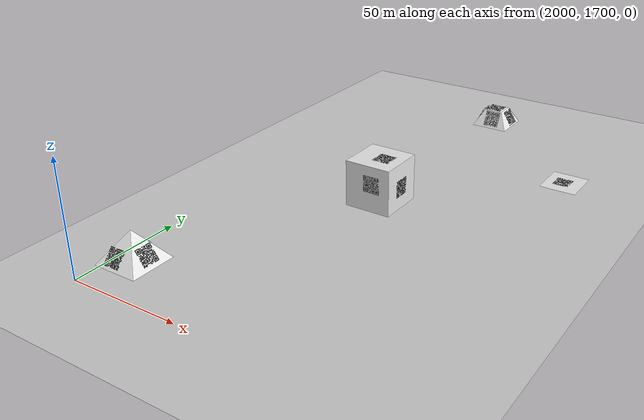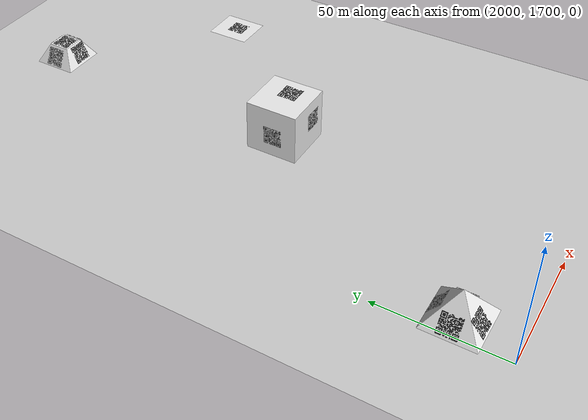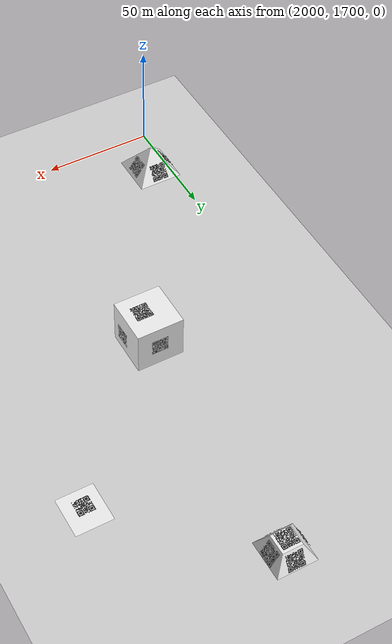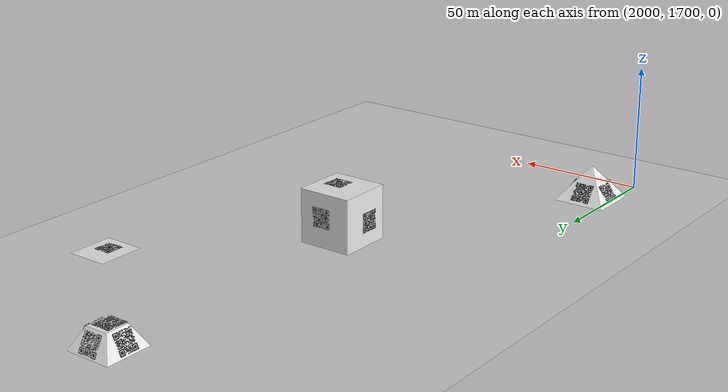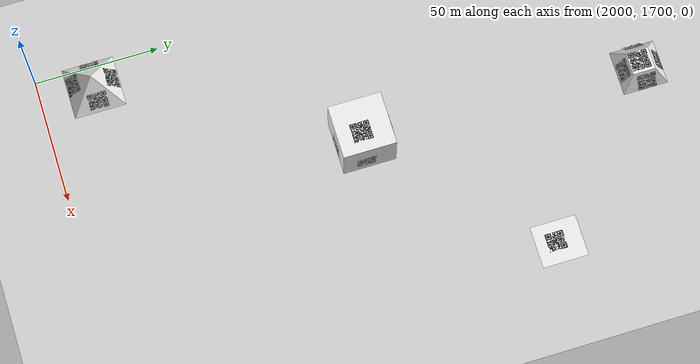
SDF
<sdf version="1.7">
 <world name="default">
  <physics name="default_physics" default="0" type="ode">
   <ode>
    <solver>
     <type>quick</type>
     <iters>100</iters>
     <sor>1</sor>
     <use_dynamic_moi_rescaling>0</use_dynamic_moi_rescaling>
    </solver>
    <constraints>
     <cfm>0</cfm>
     <erp>0.2</erp>
     <contact_max_correcting_vel>0.1</contact_max_correcting_vel>
     <contact_surface_layer>0</contact_surface_layer>
    </constraints>
   </ode>
   <real_time_update_rate>400</real_time_update_rate>
   <max_step_size>0.0025</max_step_size>
   <real_time_factor>1</real_time_factor>
  </physics>
  <scene>
   <sky><clouds><speed>5</speed></clouds></sky>
   <ambient>0.95 0.95 0.95 1</ambient>
   <background>0.3 0.3 0.3 1</background>
   <shadows>1</shadows>
  </scene>
  <gravity>0 0 -9.8</gravity>
  <magnetic_field>6e-06 2.3e-05 -4.2e-05</magnetic_field>
  <atmosphere type="adiabatic"/>
  <audio><device>default</device></audio>
  <spherical_coordinates>
   <surface_model>EARTH_WGS84</surface_model>
   <latitude_deg>0</latitude_deg>
   <longitude_deg>0</longitude_deg>
   <elevation>0</elevation>
   <heading_deg>0</heading_deg>
  </spherical_coordinates>
  <model name="ground_plane">
   <static>1</static>
   <link name="link">
    <collision name="collision">
     <geometry><plane><normal>0 0 1</normal><size>50000 50000</size></plane></geometry>
     <surface><friction><ode><mu>1</mu><mu2>1</mu2></ode></friction></surface>
    </collision>
    <visual name="runway">
     <pose>0 0 0.005 0 -0 0</pose>
     <cast_shadows>0</cast_shadows>
     <geometry><plane><normal>0 0 1</normal><size>1829 45</size></plane></geometry>
     <material>
      <script><uri>file://media/materials/scripts/gazebo.material</uri><name>Gazebo/Runway</name></script>
     </material>
    </visual>
    <visual name="grass">
     <pose>0 0 -0.1 0 -0 0</pose>
     <cast_shadows>0</cast_shadows>
     <geometry><plane><normal>0 0 1</normal><size>10000 10000</size></plane></geometry>
     <material>
      <script><uri>file://media/materials/scripts/gazebo.material</uri><name>Gazebo/Grass</name></script>
     </material>
    </visual>
    <kinematic>1</kinematic>
   </link>
  </model>
  <light name="sun" type="directional">
   <pose>1865.5 2039.39 10 0 -0 0</pose>
   <diffuse>0.8 0.8 0.8 1</diffuse>
   <specular>0.2 0.2 0.2 1</specular>
   <attenuation>
    <range>1000</range>
    <constant>0.9</constant>
    <linear>0.01</linear>
    <quadratic>0.001</quadratic>
   </attenuation>
   <direction>-0.5 0.1 -0.9</direction>
   <spot><inner_angle>0</inner_angle><outer_angle>0</outer_angle><falloff>0</falloff></spot>
  </light>
  <model name="piramid_qr_added_0">
   <pose>1997.74 1732.07 -0.020172 0 -0 0</pose>
   <static>1</static>
   <link name="link">
    <visual name="visual">
     <geometry>
      <mesh><scale>17 17 17</scale><uri>model://piramid_qr_added/meshes/piramid_qr_added.dae</uri></mesh>
     </geometry>
     <material><script><name>Gazebo/White</name><uri>__default__</uri></script></material>
    </visual>
   </link>
  </model>
  <model name="istikbalgoklerdedir_q">
   <pose>2000.32 1722.2 4.01213 0 -0.918811 0</pose>
   <static>1</static>
   <link name="link">
    <visual name="visual">
     <geometry>
      <mesh><scale>10 10 1e-06</scale><uri>model://QR_17/meshes/istikbalgoklerdedir_q.stl</uri></mesh>
     </geometry>
     <material><script><name>Gazebo/Black</name><uri>__default__</uri></script></material>
    </visual>
   </link>
  </model>
  <model name="istikbalgoklerdedir_q_0">
   <pose>2007.85 1729.47 4.3142 -0.919405 0 0</pose>
   <static>1</static>
   <link name="link">
    <visual name="visual">
     <geometry>
      <mesh><scale>10 10 1e-06</scale><uri>model://QR_17/meshes/istikbalgoklerdedir_q.stl</uri></mesh>
     </geometry>
     <material><script><name>Gazebo/Black</name><uri>__default__</uri></script></material>
    </visual>
   </link>
  </model>
  <model name="istikbalgoklerdedir_q_1">
   <pose>2015.52 1721.84 4.79632 0 0.957927 0</pose>
   <static>1</static>
   <link name="link">
    <visual name="visual">
     <geometry>
      <mesh><scale>10 10 1e-06</scale><uri>model://QR_17/meshes/istikbalgoklerdedir_q.stl</uri></mesh>
     </geometry>
     <material><script><name>Gazebo/Black</name><uri>__default__</uri></script></material>
    </visual>
   </link>
  </model>
  <model name="istikbalgoklerdedir_q_2">
   <pose>2006.35 1714.04 4.41025 0.879302 -0 0</pose>
   <static>1</static>
   <link name="link">
    <visual name="visual">
     <geometry>
      <mesh><scale>10 10 1e-06</scale><uri>model://QR_17/meshes/istikbalgoklerdedir_q.stl</uri></mesh>
     </geometry>
     <material><script><name>Gazebo/Black</name><uri>__default__</uri></script></material>
    </visual>
   </link>
  </model>
  <model name="cube_qr_added">
   <pose>2049.47 1805.48 -0.210759 0 -0 0</pose>
   <static>1</static>
   <link name="link">
    <visual name="visual">
     <geometry>
      <mesh><scale>10 10 10</scale><uri>model://cube_qr_added/meshes/cube_qr_added.dae</uri></mesh>
     </geometry>
     <material><script><name>Gazebo/White</name><uri>__default__</uri></script></material>
    </visual>
   </link>
  </model>
  <model name="square_qr">
   <pose>2112.9 1867.81 0.317165 0 -0 0</pose>
   <static>1</static>
   <link name="link">
    <visual name="visual">
     <geometry><mesh><scale>6 6 0.001</scale><uri>model://square_qr/meshes/square_qr.dae</uri></mesh></geometry>
     <material><script><name>Gazebo/White</name><uri>__default__</uri></script></material>
    </visual>
   </link>
  </model>
  <model name="mustafakemalataturk_m">
   <pose>2048.52 1815 9.5528 -1.5708 -0 -1.5708</pose>
   <static>1</static>
   <link name="link">
    <visual name="visual">
     <geometry>
      <mesh><scale>10 10 1e-06</scale><uri>model://QR_14/meshes/mustafakemalataturk_m.stl</uri></mesh>
     </geometry>
     <material><script><name>Gazebo/Black</name><uri>__default__</uri></script></material>
    </visual>
   </link>
  </model>
  <model name="mustafakemalataturk_m_0">
   <pose>2060.92 1827.54 11.6504 1.5708 -0 0</pose>
   <static>1</static>
   <link name="link">
    <visual name="visual">
     <geometry>
      <mesh><scale>10 10 1e-06</scale><uri>model://QR_14/meshes/mustafakemalataturk_m.stl</uri></mesh>
     </geometry>
     <material><script><name>Gazebo/Black</name><uri>__default__</uri></script></material>
    </visual>
   </link>
  </model>
  <model name="mustafakemalataturk_m_1">
   <pose>2062.74 1815.07 21.2381 0 -0 0</pose>
   <static>1</static>
   <link name="link">
    <visual name="visual">
     <geometry>
      <mesh><scale>10 10 1e-06</scale><uri>model://QR_14/meshes/mustafakemalataturk_m.stl</uri></mesh>
     </geometry>
     <material><script><name>Gazebo/Black</name><uri>__default__</uri></script></material>
    </visual>
   </link>
  </model>
  <model name="mustafakemalataturk_m_2">
   <pose>2062.45 1804.9 12.8554 -1.5708 0 0</pose>
   <static>1</static>
   <link name="link">
    <visual name="visual">
     <geometry>
      <mesh><scale>10 10 1e-06</scale><uri>model://QR_14/meshes/mustafakemalataturk_m.stl</uri></mesh>
     </geometry>
     <material><script><name>Gazebo/Black</name><uri>__default__</uri></script></material>
    </visual>
   </link>
  </model>
  <model name="mustafakemalataturk_m_3">
   <pose>2071.65 1814.56 10.3617 1.5708 -0 1.5708</pose>
   <static>1</static>
   <link name="link">
    <visual name="visual">
     <geometry>
      <mesh><scale>10 10 1e-06</scale><uri>model://QR_14/meshes/mustafakemalataturk_m.stl</uri></mesh>
     </geometry>
     <material><script><name>Gazebo/Black</name><uri>__default__</uri></script></material>
    </visual>
   </link>
  </model>
  <model name="testucusu_m">
   <pose>2121.01 1875.83 1 0 -0 0</pose>
   <static>1</static>
   <link name="link">
    <visual name="visual">
     <geometry><mesh><scale>10 10 1e-06</scale><uri>model://QR_06/meshes/testucusu_m.stl</uri></mesh></geometry>
     <material><script><name>Gazebo/Black</name><uri>__default__</uri></script></material>
    </visual>
   </link>
  </model>
  <model name="piramid_qr_cutted">
   <pose>2053.8 1920.37 -0.314899 0 -0 0</pose>
   <static>1</static>
   <link name="link">
    <visual name="visual">
     <geometry>
      <mesh><scale>12 12 12</scale><uri>model://piramid_qr_cutted/meshes/piramid_qr_cutted.dae</uri></mesh>
     </geometry>
     <material><script><name>Gazebo/White</name><uri>__default__</uri></script></material>
    </visual>
   </link>
  </model>
  <model name="teknofest_h">
   <pose>2062.56 1929.08 8.14827 0 -0 0</pose>
   <static>1</static>
   <link name="link">
    <visual name="visual">
     <geometry><mesh><scale>10 10 1e-06</scale><uri>model://QR_12/meshes/teknofest_h.stl</uri></mesh></geometry>
     <material><script><name>Gazebo/Black</name><uri>__default__</uri></script></material>
    </visual>
   </link>
  </model>
  <model name="teknofest_h_0">
   <pose>2063.57 1922.36 4.2351 1.1322 -0 0</pose>
   <static>1</static>
   <link name="link">
    <visual name="visual">
     <geometry><mesh><scale>10 10 1e-06</scale><uri>model://QR_12/meshes/teknofest_h.stl</uri></mesh></geometry>
     <material><script><name>Gazebo/Black</name><uri>__default__</uri></script></material>
    </visual>
   </link>
  </model>
  <model name="teknofest_h_1">
   <pose>2055.28 1929.26 4.15767 0 -1.10743 0</pose>
   <static>1</static>
   <link name="link">
    <visual name="visual">
     <geometry><mesh><scale>10 10 1e-06</scale><uri>model://QR_12/meshes/teknofest_h.stl</uri></mesh></geometry>
     <material><script><name>Gazebo/Black</name><uri>__default__</uri></script></material>
    </visual>
   </link>
  </model>
  <model name="teknofest_h_2">
   <pose>2063.13 1936.68 3.8215 -1.09637 0 0</pose>
   <static>1</static>
   <link name="link">
    <visual name="visual">
     <geometry><mesh><scale>10 10 1e-06</scale><uri>model://QR_12/meshes/teknofest_h.stl</uri></mesh></geometry>
     <material><script><name>Gazebo/Black</name><uri>__default__</uri></script></material>
    </visual>
   </link>
  </model>
  <model name="teknofest_h_3">
   <pose>2070.46 1929.82 4.34241 0 1.02436 0</pose>
   <static>1</static>
   <link name="link">
    <visual name="visual">
     <geometry><mesh><scale>10 10 1e-06</scale><uri>model://QR_12/meshes/teknofest_h.stl</uri></mesh></geometry>
     <material><script><name>Gazebo/Black</name><uri>__default__</uri></script></material>
    </visual>
   </link>
  </model>
 </world>
</sdf>
